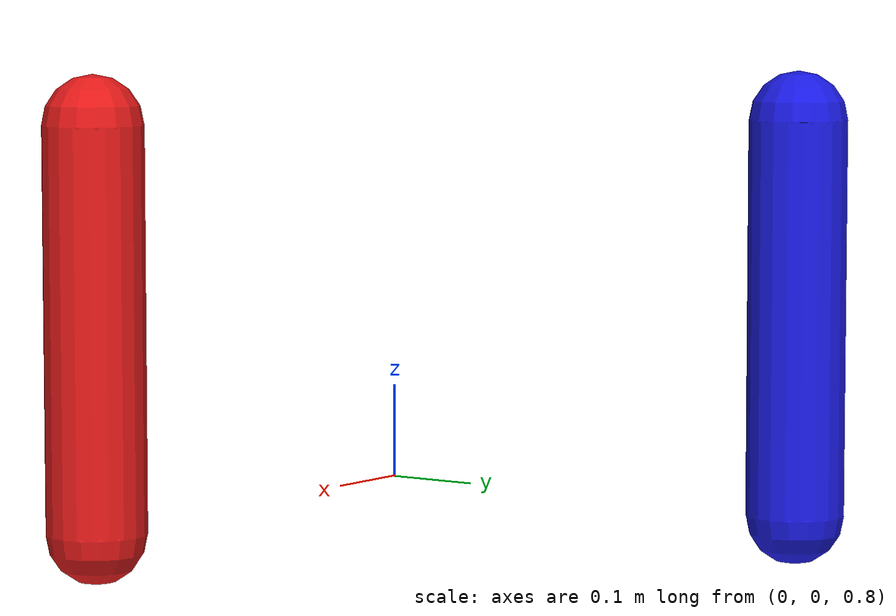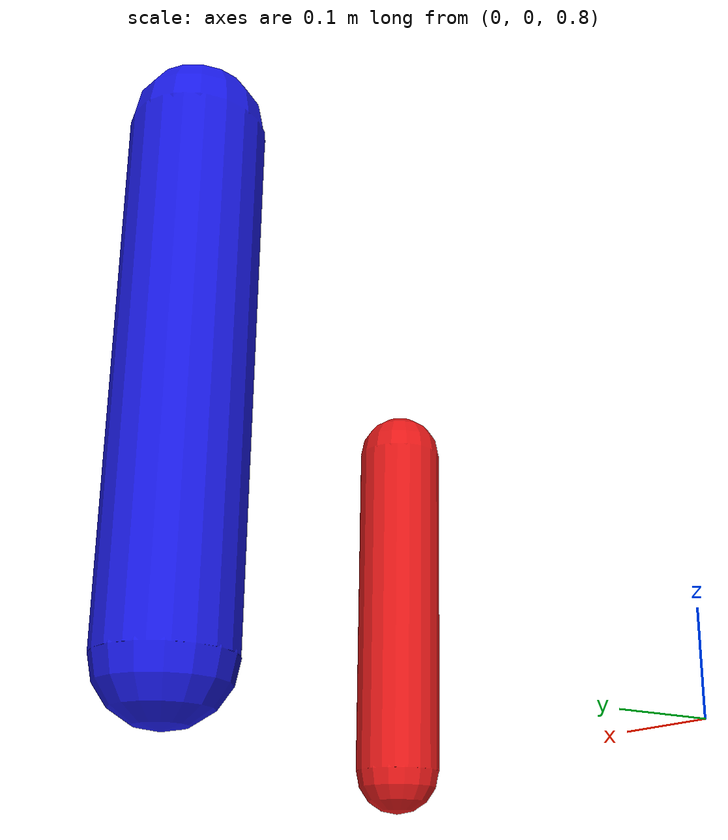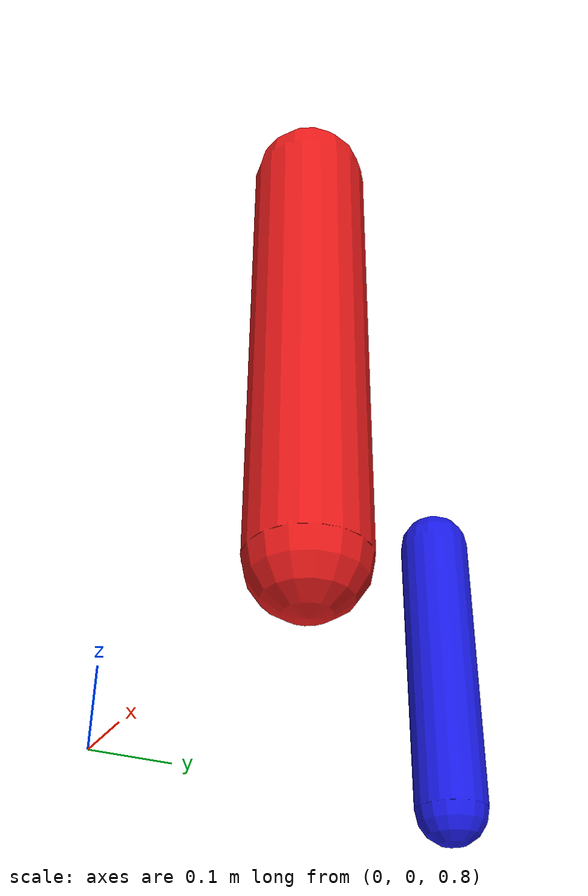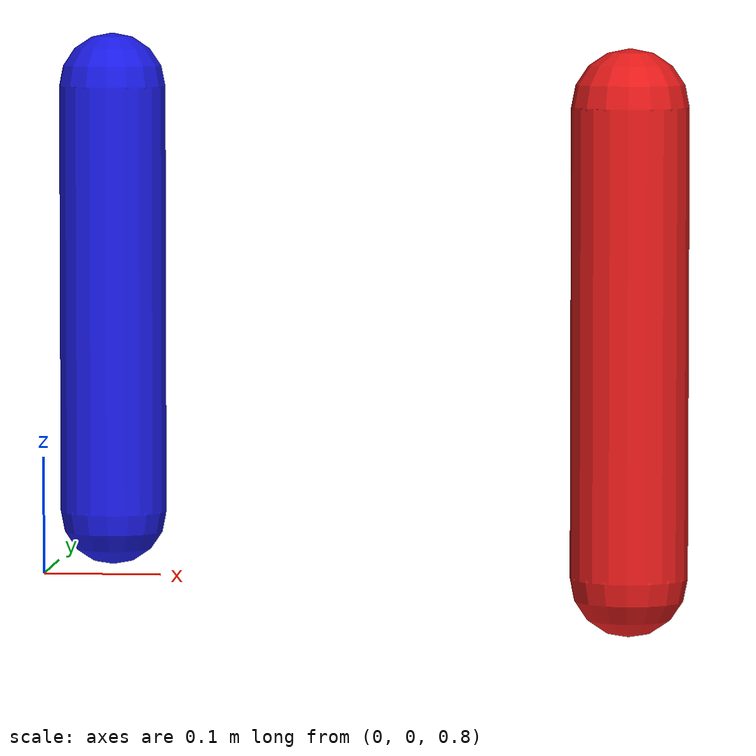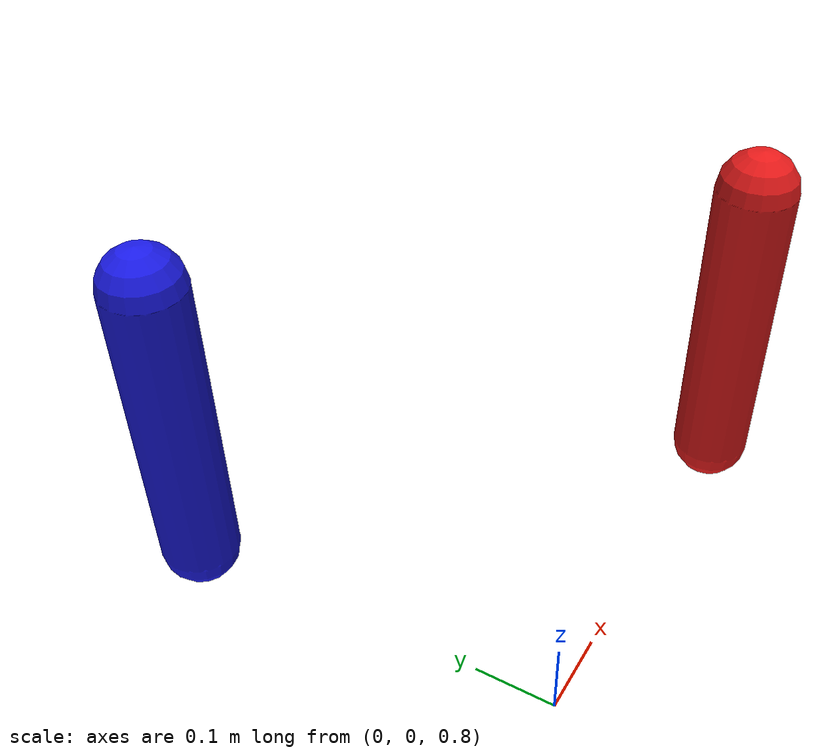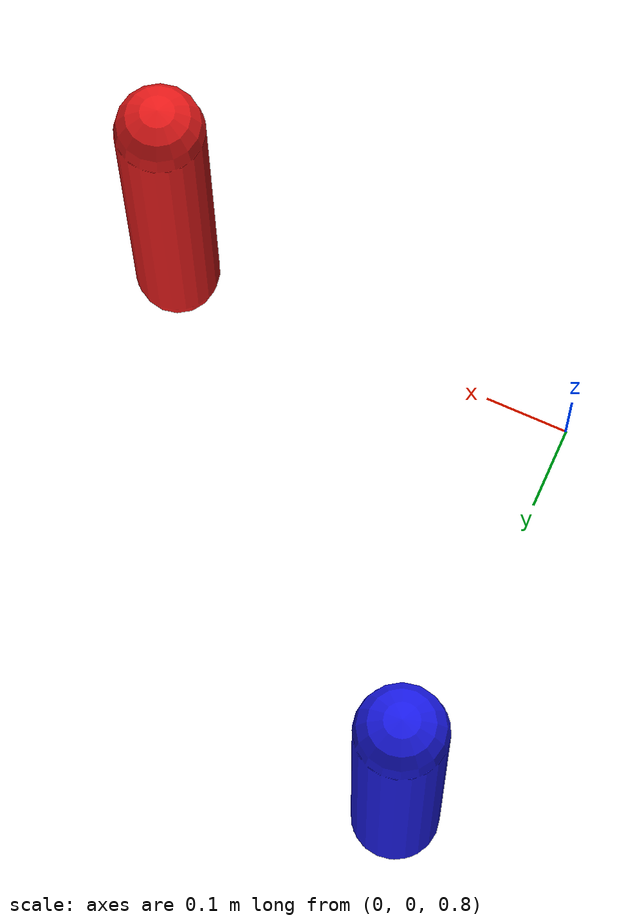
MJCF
<mujoco model="equality_constraint_test">
    <compiler angle="degree"/>
    <option timestep="0.002"/>
    <worldbody>
        <!-- Parent body -->
        <body name="parent" pos="0 0 1.0">
            <!-- Child body 1 -->
            <body name="child1" pos="0.5 0 0">
                <joint name="joint1" type="hinge" axis="0 1 0" range="-45 45"/>
                <geom type="capsule" size="0.05 0.2" rgba="0.9 0.1 0.1 1"/>
            </body>
            <!-- Child body 2 -->
            <body name="child2" pos="0 0.5 0">
                <joint name="joint2" type="hinge" axis="0 1 0" range="-45 45"/>
                <geom type="capsule" size="0.05 0.2" rgba="0.1 0.1 0.9 1"/>
            </body>
        </body>
    </worldbody>
    <!-- Equality constraint to enforce identical DoFs -->
    <equality>
        <joint name="joint_equality" joint1="joint1" joint2="joint2"/>
    </equality>
</mujoco>
